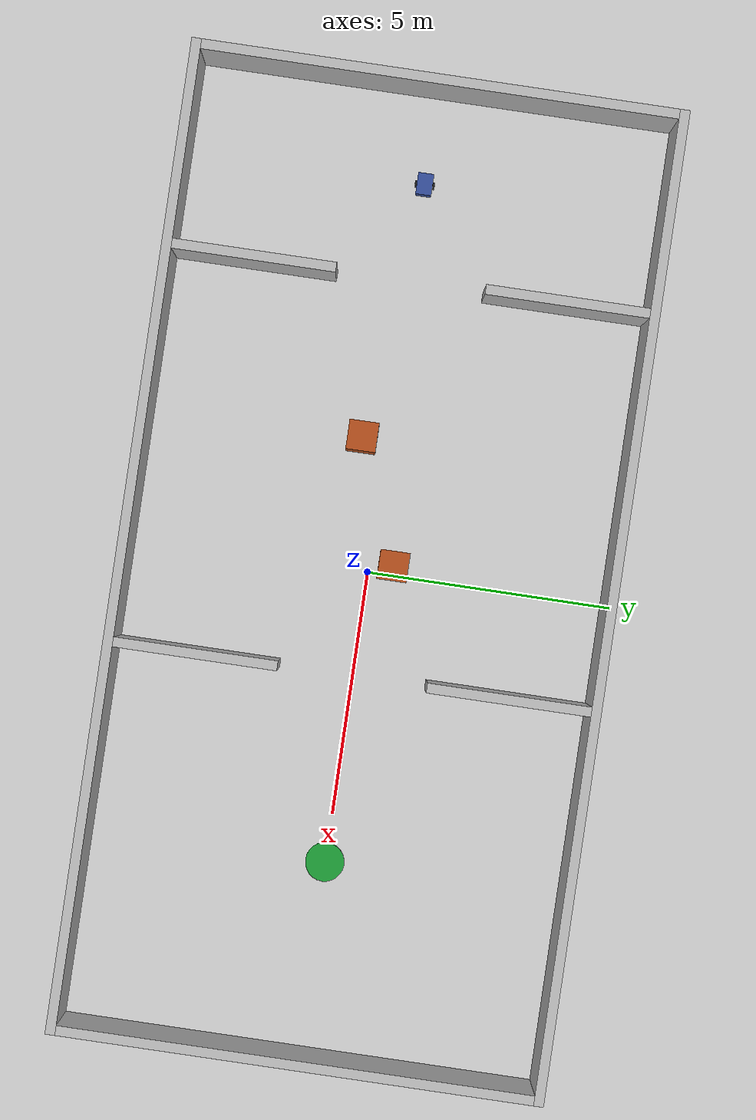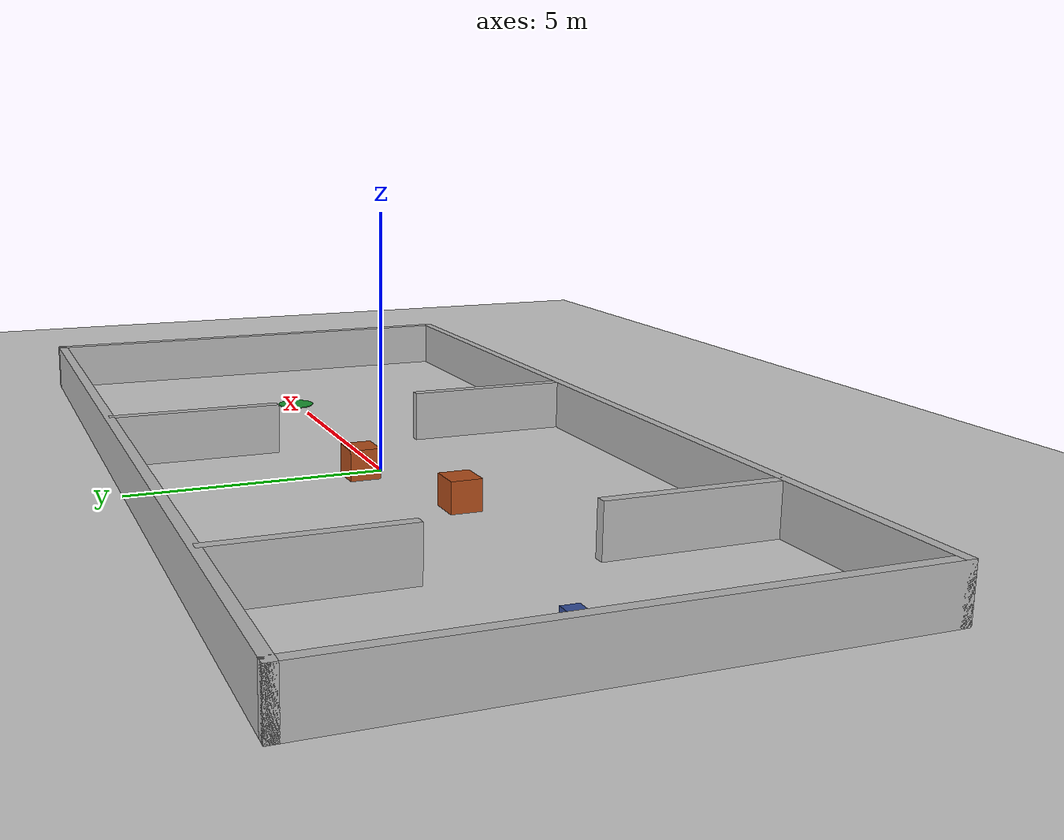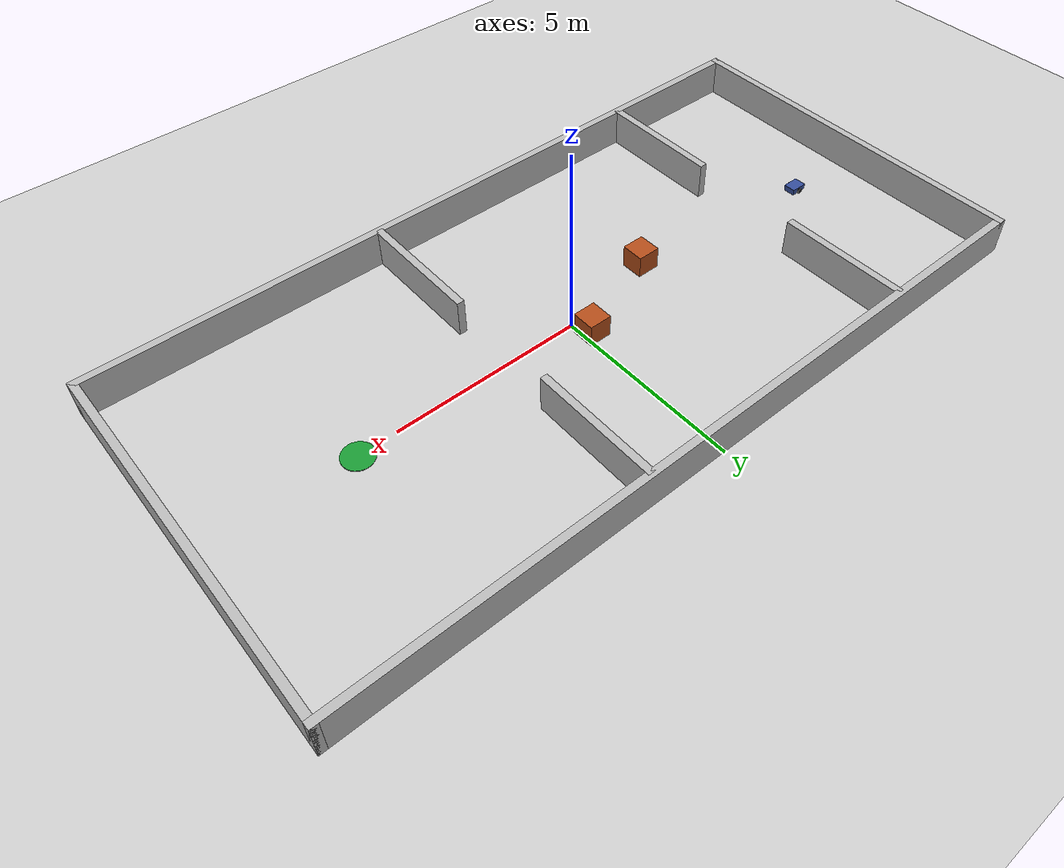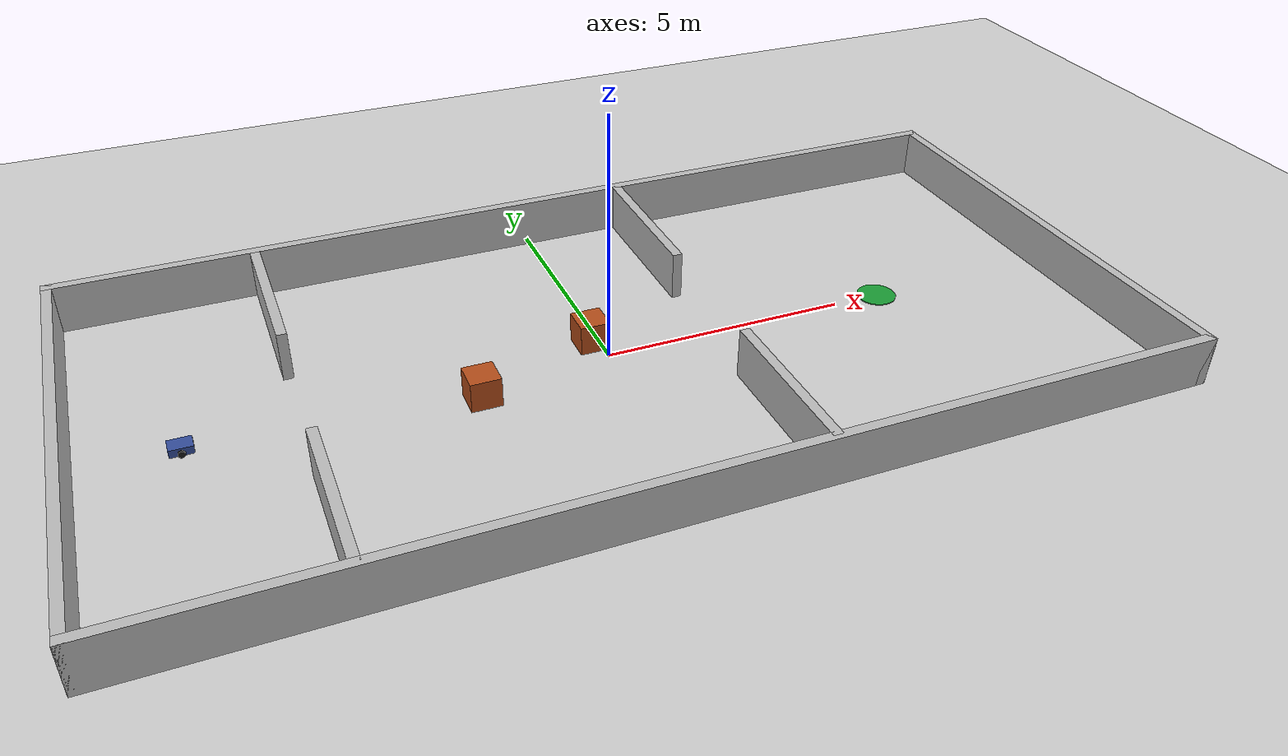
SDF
<?xml version="1.0" ?>
<sdf version="1.10">
  <world name="kern_corridor">
    <physics name="1ms" type="ignored">
      <max_step_size>0.001</max_step_size>
      <real_time_factor>1.0</real_time_factor>
    </physics>

    <plugin filename="gz-sim-physics-system" name="gz::sim::systems::Physics"/>
    <plugin filename="gz-sim-user-commands-system" name="gz::sim::systems::UserCommands"/>
    <plugin filename="gz-sim-scene-broadcaster-system" name="gz::sim::systems::SceneBroadcaster"/>
    <plugin filename="gz-sim-sensors-system" name="gz::sim::systems::Sensors">
      <render_engine>ogre2</render_engine>
    </plugin>

    <light type="directional" name="sun">
      <cast_shadows>true</cast_shadows>
      <pose>0 0 10 0 0 0</pose>
      <diffuse>0.8 0.8 0.8 1</diffuse>
      <specular>0.2 0.2 0.2 1</specular>
      <direction>-0.5 0.1 -0.9</direction>
    </light>

    <model name="ground_plane">
      <static>true</static>
      <link name="link">
        <collision name="collision">
          <geometry><plane><normal>0 0 1</normal><size>100 100</size></plane></geometry>
        </collision>
        <visual name="visual">
          <geometry><plane><normal>0 0 1</normal><size>100 100</size></plane></geometry>
          <material>
            <ambient>0.8 0.8 0.8 1</ambient>
            <diffuse>0.8 0.8 0.8 1</diffuse>
          </material>
        </visual>
      </link>
    </model>

    <!-- Perimeter. Each wall is 0.2 m thick and 1 m tall. -->
    <model name="wall_south">
      <static>true</static>
      <pose>0 -4.9 0.5 0 0 0</pose>
      <link name="link">
        <collision name="collision"><geometry><box><size>20 0.2 1</size></box></geometry></collision>
        <visual name="visual"><geometry><box><size>20 0.2 1</size></box></geometry></visual>
      </link>
    </model>
    <model name="wall_north">
      <static>true</static>
      <pose>0 4.9 0.5 0 0 0</pose>
      <link name="link">
        <collision name="collision"><geometry><box><size>20 0.2 1</size></box></geometry></collision>
        <visual name="visual"><geometry><box><size>20 0.2 1</size></box></geometry></visual>
      </link>
    </model>
    <model name="wall_west">
      <static>true</static>
      <pose>-9.9 0 0.5 0 0 0</pose>
      <link name="link">
        <collision name="collision"><geometry><box><size>0.2 10 1</size></box></geometry></collision>
        <visual name="visual"><geometry><box><size>0.2 10 1</size></box></geometry></visual>
      </link>
    </model>
    <model name="wall_east">
      <static>true</static>
      <pose>9.9 0 0.5 0 0 0</pose>
      <link name="link">
        <collision name="collision"><geometry><box><size>0.2 10 1</size></box></geometry></collision>
        <visual name="visual"><geometry><box><size>0.2 10 1</size></box></geometry></visual>
      </link>
    </model>

    <!-- Corridor walls: a 3 m lane along y in [-1.5, +1.5], matching maps/generate_map.py. -->
    <model name="corridor_south_west">
      <static>true</static>
      <pose>-5.9 -3.2 0.5 0 0 0</pose>
      <link name="link">
        <collision name="collision"><geometry><box><size>0.2 3.4 1</size></box></geometry></collision>
        <visual name="visual"><geometry><box><size>0.2 3.4 1</size></box></geometry></visual>
      </link>
    </model>
    <model name="corridor_north_west">
      <static>true</static>
      <pose>-5.9 3.2 0.5 0 0 0</pose>
      <link name="link">
        <collision name="collision"><geometry><box><size>0.2 3.4 1</size></box></geometry></collision>
        <visual name="visual"><geometry><box><size>0.2 3.4 1</size></box></geometry></visual>
      </link>
    </model>
    <model name="corridor_south_east">
      <static>true</static>
      <pose>2.1 -3.2 0.5 0 0 0</pose>
      <link name="link">
        <collision name="collision"><geometry><box><size>0.2 3.4 1</size></box></geometry></collision>
        <visual name="visual"><geometry><box><size>0.2 3.4 1</size></box></geometry></visual>
      </link>
    </model>
    <model name="corridor_north_east">
      <static>true</static>
      <pose>2.1 3.2 0.5 0 0 0</pose>
      <link name="link">
        <collision name="collision"><geometry><box><size>0.2 3.4 1</size></box></geometry></collision>
        <visual name="visual"><geometry><box><size>0.2 3.4 1</size></box></geometry></visual>
      </link>
    </model>

    <!-- Two static obstacles inside the lane. -->
    <model name="obstacle_a">
      <static>true</static>
      <pose>-2.7 -0.5 0.3 0 0 0</pose>
      <link name="link">
        <collision name="collision"><geometry><box><size>0.6 0.6 0.6</size></box></geometry></collision>
        <visual name="visual">
          <geometry><box><size>0.6 0.6 0.6</size></box></geometry>
          <material><ambient>0.7 0.3 0.1 1</ambient><diffuse>0.7 0.3 0.1 1</diffuse></material>
        </visual>
      </link>
    </model>
    <model name="obstacle_b">
      <static>true</static>
      <pose>-0.2 0.5 0.3 0 0 0</pose>
      <link name="link">
        <collision name="collision"><geometry><box><size>0.6 0.6 0.6</size></box></geometry></collision>
        <visual name="visual">
          <geometry><box><size>0.6 0.6 0.6</size></box></geometry>
          <material><ambient>0.7 0.3 0.1 1</ambient><diffuse>0.7 0.3 0.1 1</diffuse></material>
        </visual>
      </link>
    </model>

    <!-- The destination the demo navigates to. Visual only. -->
    <model name="goal_marker">
      <static>true</static>
      <pose>6 0 0.01 0 0 0</pose>
      <link name="link">
        <visual name="visual">
          <geometry><cylinder><radius>0.4</radius><length>0.02</length></cylinder></geometry>
          <material><ambient>0.1 0.6 0.2 1</ambient><diffuse>0.1 0.6 0.2 1</diffuse></material>
        </visual>
      </link>
    </model>

    <include>
      <uri>model://kern_bot</uri>
      <pose>-8 0 0.1 0 0 0</pose>
    </include>
  </world>
</sdf>

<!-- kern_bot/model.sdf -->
<!--
  Differential drive, odometry, TF, and a planar lidar: the four things Nav2
  needs and nothing else.
-->
<sdf version="1.10">
  <model name="kern_bot">
    <pose>0 0 0.1 0 0 0</pose>

    <link name="base_link">
      <inertial>
        <mass>8.0</mass>
        <inertia><ixx>0.12</ixx><iyy>0.12</iyy><izz>0.2</izz><ixy>0</ixy><ixz>0</ixz><iyz>0</iyz></inertia>
      </inertial>
      <collision name="collision">
        <geometry><box><size>0.44 0.32 0.16</size></box></geometry>
      </collision>
      <visual name="visual">
        <geometry><box><size>0.44 0.32 0.16</size></box></geometry>
        <material><ambient>0.2 0.3 0.6 1</ambient><diffuse>0.2 0.3 0.6 1</diffuse></material>
      </visual>

      <sensor name="lidar" type="gpu_lidar">
        <pose>0.16 0 0.12 0 0 0</pose>
        <topic>scan</topic>
        <update_rate>10</update_rate>
        <always_on>true</always_on>
        <visualize>true</visualize>
        <lidar>
          <scan>
            <horizontal>
              <samples>360</samples>
              <resolution>1</resolution>
              <min_angle>-3.14159</min_angle>
              <max_angle>3.14159</max_angle>
            </horizontal>
          </scan>
          <range><min>0.12</min><max>12.0</max><resolution>0.01</resolution></range>
        </lidar>
      </sensor>
    </link>

    <link name="wheel_left">
      <pose>0 0.18 -0.03 -1.5707 0 0</pose>
      <inertial>
        <mass>0.6</mass>
        <inertia><ixx>0.002</ixx><iyy>0.002</iyy><izz>0.003</izz><ixy>0</ixy><ixz>0</ixz><iyz>0</iyz></inertia>
      </inertial>
      <collision name="collision">
        <geometry><cylinder><radius>0.07</radius><length>0.04</length></cylinder></geometry>
        <surface><friction><ode><mu>1.2</mu><mu2>1.2</mu2></ode></friction></surface>
      </collision>
      <visual name="visual">
        <geometry><cylinder><radius>0.07</radius><length>0.04</length></cylinder></geometry>
        <material><ambient>0.1 0.1 0.1 1</ambient><diffuse>0.1 0.1 0.1 1</diffuse></material>
      </visual>
    </link>

    <link name="wheel_right">
      <pose>0 -0.18 -0.03 -1.5707 0 0</pose>
      <inertial>
        <mass>0.6</mass>
        <inertia><ixx>0.002</ixx><iyy>0.002</iyy><izz>0.003</izz><ixy>0</ixy><ixz>0</ixz><iyz>0</iyz></inertia>
      </inertial>
      <collision name="collision">
        <geometry><cylinder><radius>0.07</radius><length>0.04</length></cylinder></geometry>
        <surface><friction><ode><mu>1.2</mu><mu2>1.2</mu2></ode></friction></surface>
      </collision>
      <visual name="visual">
        <geometry><cylinder><radius>0.07</radius><length>0.04</length></cylinder></geometry>
        <material><ambient>0.1 0.1 0.1 1</ambient><diffuse>0.1 0.1 0.1 1</diffuse></material>
      </visual>
    </link>

    <link name="caster">
      <pose>-0.17 0 -0.06 0 0 0</pose>
      <inertial>
        <mass>0.2</mass>
        <inertia><ixx>0.0002</ixx><iyy>0.0002</iyy><izz>0.0002</izz><ixy>0</ixy><ixz>0</ixz><iyz>0</iyz></inertia>
      </inertial>
      <collision name="collision">
        <geometry><sphere><radius>0.04</radius></sphere></geometry>
        <surface><friction><ode><mu>0.05</mu><mu2>0.05</mu2></ode></friction></surface>
      </collision>
      <visual name="visual">
        <geometry><sphere><radius>0.04</radius></sphere></geometry>
      </visual>
    </link>

    <joint name="wheel_left_joint" type="revolute">
      <parent>base_link</parent>
      <child>wheel_left</child>
      <axis><xyz>0 0 1</xyz><limit><lower>-1e16</lower><upper>1e16</upper></limit></axis>
    </joint>
    <joint name="wheel_right_joint" type="revolute">
      <parent>base_link</parent>
      <child>wheel_right</child>
      <axis><xyz>0 0 1</xyz><limit><lower>-1e16</lower><upper>1e16</upper></limit></axis>
    </joint>
    <joint name="caster_joint" type="ball">
      <parent>base_link</parent>
      <child>caster</child>
    </joint>

    <plugin filename="gz-sim-diff-drive-system" name="gz::sim::systems::DiffDrive">
      <left_joint>wheel_left_joint</left_joint>
      <right_joint>wheel_right_joint</right_joint>
      <wheel_separation>0.36</wheel_separation>
      <wheel_radius>0.07</wheel_radius>
      <topic>cmd_vel</topic>
      <odom_topic>odom</odom_topic>
      <frame_id>odom</frame_id>
      <child_frame_id>base_link</child_frame_id>
      <odom_publish_frequency>30</odom_publish_frequency>
      <tf_topic>/tf</tf_topic>
      <max_linear_acceleration>1.0</max_linear_acceleration>
      <min_linear_acceleration>-1.0</min_linear_acceleration>
    </plugin>

    <plugin filename="gz-sim-joint-state-publisher-system"
            name="gz::sim::systems::JointStatePublisher">
      <topic>joint_states</topic>
    </plugin>
  </model>
</sdf>
